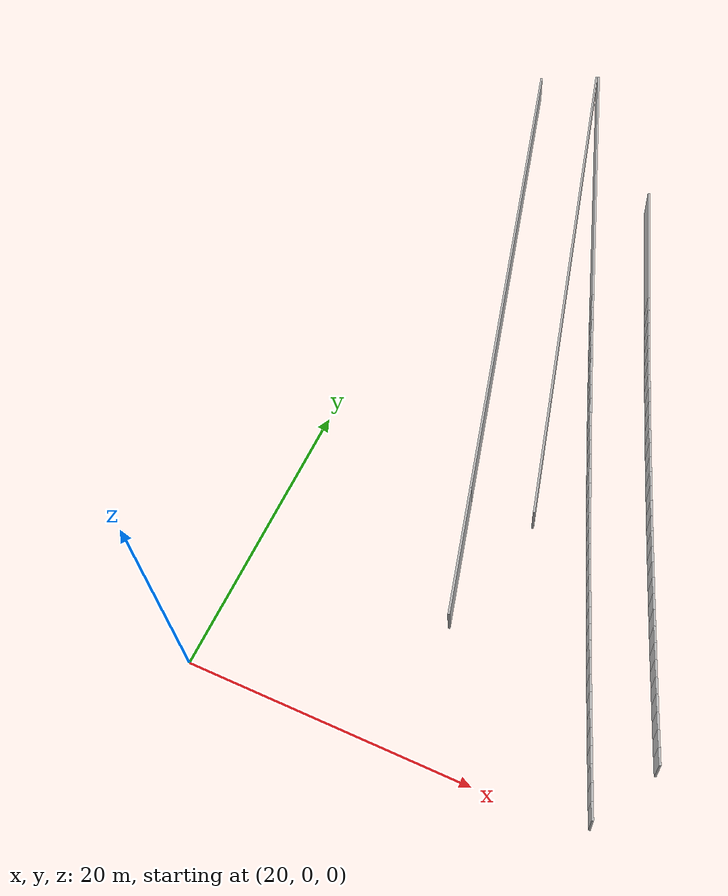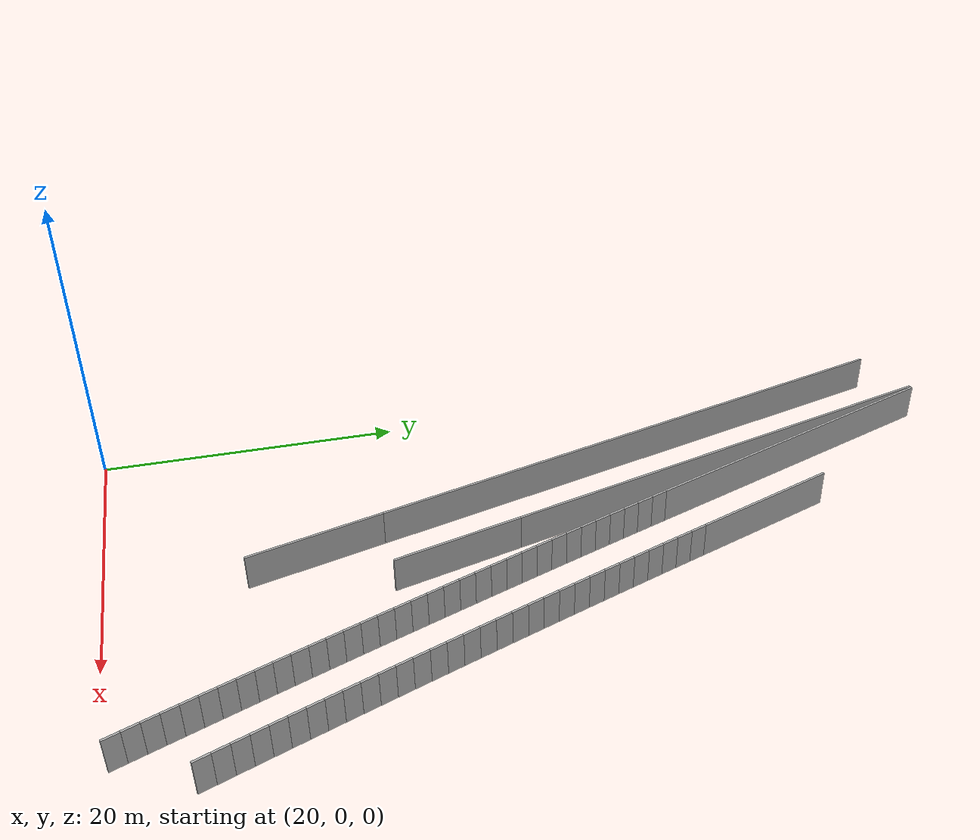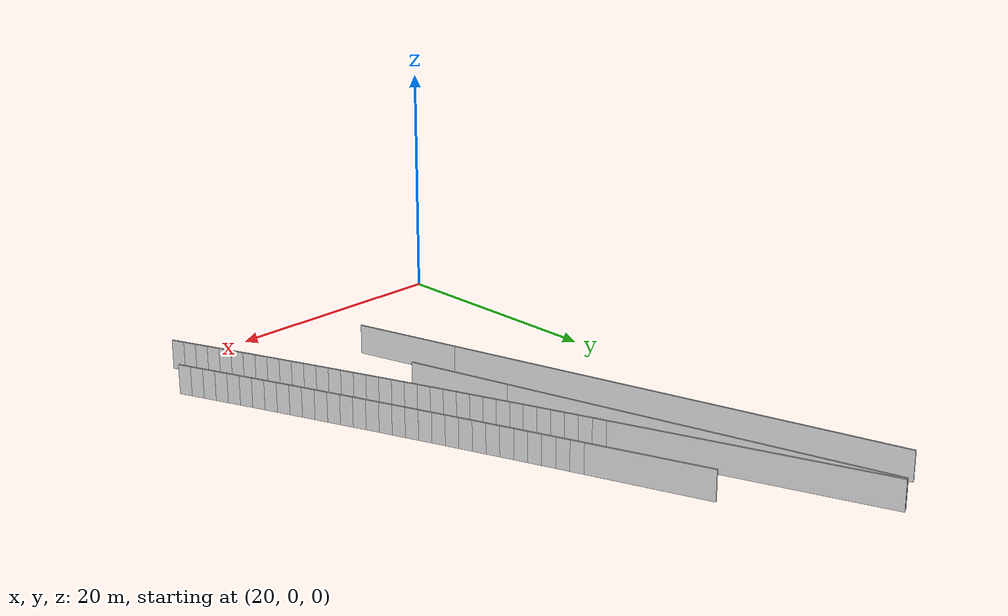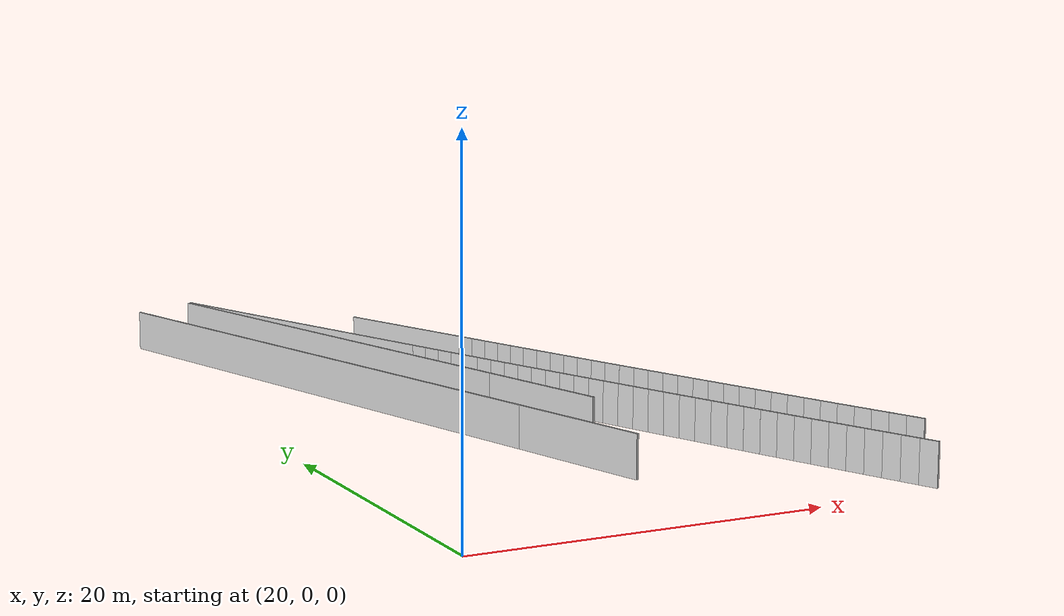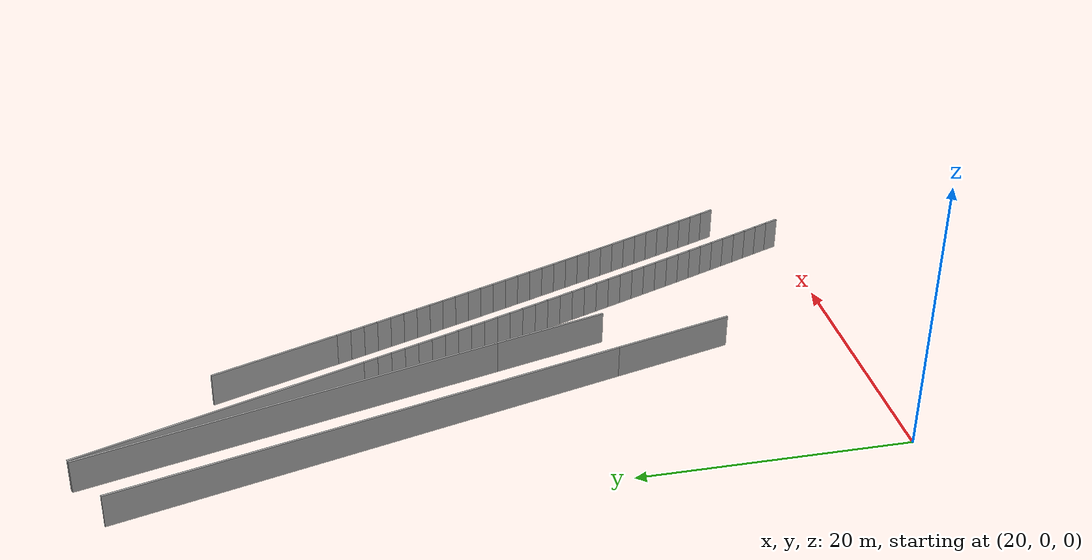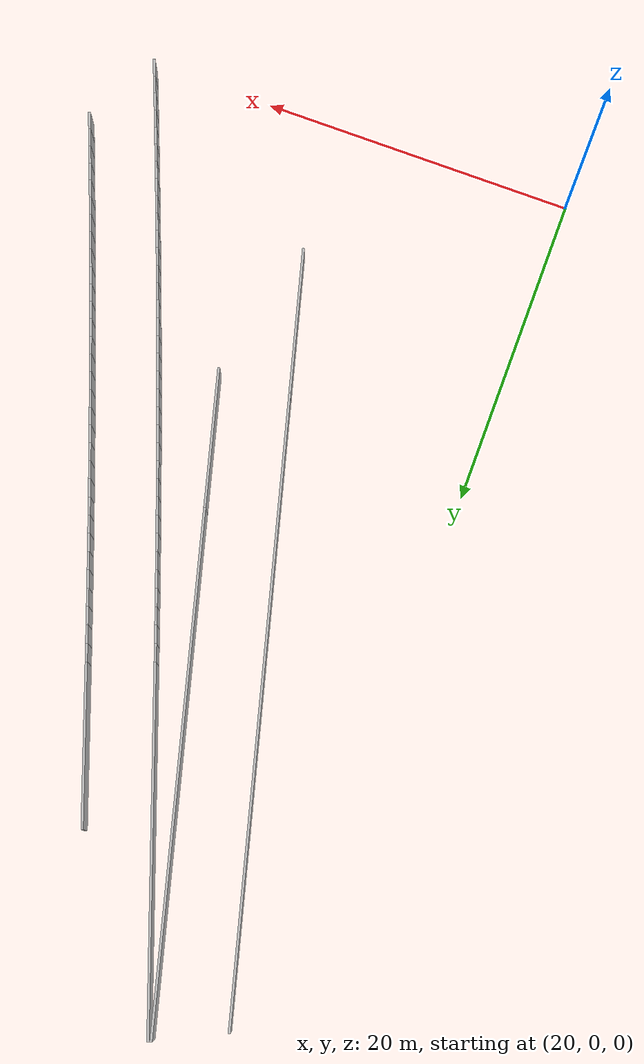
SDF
<?xml version="1.0" ?>
<sdf version="1.6">
  <model name="sps_0416">
    <pose frame="">0 0 0 0 -0 0</pose>
    <static>1</static>
    <self_collide>0</self_collide>
    <allow_auto_disable>0</allow_auto_disable>
    <link name="Wall0">
      <kinematic>0</kinematic>
      <gravity>1</gravity>
      <self_collide>0</self_collide>
      <collision name="collision">
        <geometry>
          <box>
            <size>22.2248 0.15 2.5</size>
          </box>
        </geometry>
        <pose frame="">0 0 0 0 -0 0</pose>
      </collision>
      <visual name="visual">
        <geometry>
          <box>
            <size>22.2248 0.15 2.5</size>
          </box>
        </geometry>
        <pose frame="">0 0 0 0 -0 0</pose>
        <cast_shadows>1</cast_shadows>
        <transparency>0.0</transparency>
      </visual>
      <pose frame="">30.1934 46.7419 1.25 0 -0 1.91495</pose>
    </link>
    <link name="Wall88">
      <kinematic>0</kinematic>
      <gravity>1</gravity>
      <self_collide>0</self_collide>
      <collision name="collision">
        <geometry>
          <box>
            <size>9.98642 0.15 2.5</size>
          </box>
        </geometry>
        <pose frame="">0 0 0 0 -0 0</pose>
      </collision>
      <visual name="visual">
        <geometry>
          <box>
            <size>9.98642 0.15 2.5</size>
          </box>
        </geometry>
        <pose frame="">0 0 0 0 -0 0</pose>
        <cast_shadows>1</cast_shadows>
        <transparency>0.0</transparency>
      </visual>
      <pose frame="">36.154 42.3808 1.25 0 0 -1.22667</pose>
    </link>
    <link name="Wall273">
      <kinematic>0</kinematic>
      <gravity>1</gravity>
      <self_collide>0</self_collide>
      <collision name="collision">
        <geometry>
          <box>
            <size>8.81616 0.15 2.5</size>
          </box>
        </geometry>
        <pose frame="">0 0 0 0 -0 0</pose>
      </collision>
      <visual name="visual">
        <geometry>
          <box>
            <size>8.81616 0.15 2.5</size>
          </box>
        </geometry>
        <pose frame="">0 0 0 0 -0 0</pose>
        <cast_shadows>1</cast_shadows>
        <transparency>0.0</transparency>
      </visual>
      <pose frame="">35.6053 22.1523 1.25 0 -0 1.83141</pose>
    </link>
    <link name="Wall274">
      <kinematic>0</kinematic>
      <gravity>1</gravity>
      <self_collide>0</self_collide>
      <collision name="collision">
        <geometry>
          <box>
            <size>31.8043 0.15 2.5</size>
          </box>
        </geometry>
        <pose frame="">0 0 0 0 -0 0</pose>
      </collision>
      <visual name="visual">
        <geometry>
          <box>
            <size>31.8043 0.15 2.5</size>
          </box>
        </geometry>
        <pose frame="">0 0 0 0 -0 0</pose>
        <cast_shadows>1</cast_shadows>
        <transparency>0.0</transparency>
      </visual>
      <pose frame="">30.3719 41.7767 1.25 0 -0 1.83141</pose>
    </link>
    <link name="Wall332">
      <kinematic>0</kinematic>
      <gravity>1</gravity>
      <self_collide>0</self_collide>
      <collision name="collision">
        <geometry>
          <box>
            <size>9.27059 0.15 2.5</size>
          </box>
        </geometry>
        <pose frame="">0 0 0 0 -0 0</pose>
      </collision>
      <visual name="visual">
        <geometry>
          <box>
            <size>9.27059 0.15 2.5</size>
          </box>
        </geometry>
        <pose frame="">0 0 0 0 -0 0</pose>
        <cast_shadows>1</cast_shadows>
        <transparency>0.0</transparency>
      </visual>
      <pose frame="">33.2761 13.414 1.25 0 -0 1.83117</pose>
    </link>
    <link name="Wall333">
      <kinematic>0</kinematic>
      <gravity>1</gravity>
      <self_collide>0</self_collide>
      <collision name="collision">
        <geometry>
          <box>
            <size>38.5413 0.15 2.5</size>
          </box>
        </geometry>
        <pose frame="">0 0 0 0 -0 0</pose>
      </collision>
      <visual name="visual">
        <geometry>
          <box>
            <size>38.5413 0.15 2.5</size>
          </box>
        </geometry>
        <pose frame="">0 0 0 0 -0 0</pose>
        <cast_shadows>1</cast_shadows>
        <transparency>0.0</transparency>
      </visual>
      <pose frame="">27.1216 36.5142 1.25 0 -0 1.83117</pose>
    </link>
    <link name="Wall4709">
      <kinematic>0</kinematic>
      <gravity>1</gravity>
      <self_collide>0</self_collide>
      <collision name="collision">
        <geometry>
          <box>
            <size>1.12145 0.15 2.5</size>
          </box>
        </geometry>
        <pose frame="">0 0 0 0 -0 0</pose>
      </collision>
      <visual name="visual">
        <geometry>
          <box>
            <size>1.12145 0.15 2.5</size>
          </box>
        </geometry>
        <pose frame="">0 0 0 0 -0 0</pose>
        <cast_shadows>1</cast_shadows>
        <transparency>0.0</transparency>
      </visual>
      <pose frame="">38.0285 37.1527 1.25 0 0 -1.22545</pose>
    </link>
    <link name="Wall4710">
      <kinematic>0</kinematic>
      <gravity>1</gravity>
      <self_collide>0</self_collide>
      <collision name="collision">
        <geometry>
          <box>
            <size>1.1215 0.15 2.5</size>
          </box>
        </geometry>
        <pose frame="">0 0 0 0 -0 0</pose>
      </collision>
      <visual name="visual">
        <geometry>
          <box>
            <size>1.1215 0.15 2.5</size>
          </box>
        </geometry>
        <pose frame="">0 0 0 0 -0 0</pose>
        <cast_shadows>1</cast_shadows>
        <transparency>0.0</transparency>
      </visual>
      <pose frame="">38.4088 36.0977 1.25 0 0 -1.22419</pose>
    </link>
    <link name="Wall4711">
      <kinematic>0</kinematic>
      <gravity>1</gravity>
      <self_collide>0</self_collide>
      <collision name="collision">
        <geometry>
          <box>
            <size>1.12128 0.15 2.5</size>
          </box>
        </geometry>
        <pose frame="">0 0 0 0 -0 0</pose>
      </collision>
      <visual name="visual">
        <geometry>
          <box>
            <size>1.12128 0.15 2.5</size>
          </box>
        </geometry>
        <pose frame="">0 0 0 0 -0 0</pose>
        <cast_shadows>1</cast_shadows>
        <transparency>0.0</transparency>
      </visual>
      <pose frame="">38.7903 35.0432 1.25 0 0 -1.22314</pose>
    </link>
    <link name="Wall4712">
      <kinematic>0</kinematic>
      <gravity>1</gravity>
      <self_collide>0</self_collide>
      <collision name="collision">
        <geometry>
          <box>
            <size>1.1214 0.15 2.5</size>
          </box>
        </geometry>
        <pose frame="">0 0 0 0 -0 0</pose>
      </collision>
      <visual name="visual">
        <geometry>
          <box>
            <size>1.1214 0.15 2.5</size>
          </box>
        </geometry>
        <pose frame="">0 0 0 0 -0 0</pose>
        <cast_shadows>1</cast_shadows>
        <transparency>0.0</transparency>
      </visual>
      <pose frame="">39.1731 33.9892 1.25 0 0 -1.22173</pose>
    </link>
    <link name="Wall4713">
      <kinematic>0</kinematic>
      <gravity>1</gravity>
      <self_collide>0</self_collide>
      <collision name="collision">
        <geometry>
          <box>
            <size>1.12143 0.15 2.5</size>
          </box>
        </geometry>
        <pose frame="">0 0 0 0 -0 0</pose>
      </collision>
      <visual name="visual">
        <geometry>
          <box>
            <size>1.12143 0.15 2.5</size>
          </box>
        </geometry>
        <pose frame="">0 0 0 0 -0 0</pose>
        <cast_shadows>1</cast_shadows>
        <transparency>0.0</transparency>
      </visual>
      <pose frame="">39.5572 32.9356 1.25 0 0 -1.2207</pose>
    </link>
    <link name="Wall4714">
      <kinematic>0</kinematic>
      <gravity>1</gravity>
      <self_collide>0</self_collide>
      <collision name="collision">
        <geometry>
          <box>
            <size>1.12126 0.15 2.5</size>
          </box>
        </geometry>
        <pose frame="">0 0 0 0 -0 0</pose>
      </collision>
      <visual name="visual">
        <geometry>
          <box>
            <size>1.12126 0.15 2.5</size>
          </box>
        </geometry>
        <pose frame="">0 0 0 0 -0 0</pose>
        <cast_shadows>1</cast_shadows>
        <transparency>0.0</transparency>
      </visual>
      <pose frame="">39.9424 31.8825 1.25 0 0 -1.21954</pose>
    </link>
    <link name="Wall4715">
      <kinematic>0</kinematic>
      <gravity>1</gravity>
      <self_collide>0</self_collide>
      <collision name="collision">
        <geometry>
          <box>
            <size>1.1214 0.15 2.5</size>
          </box>
        </geometry>
        <pose frame="">0 0 0 0 -0 0</pose>
      </collision>
      <visual name="visual">
        <geometry>
          <box>
            <size>1.1214 0.15 2.5</size>
          </box>
        </geometry>
        <pose frame="">0 0 0 0 -0 0</pose>
        <cast_shadows>1</cast_shadows>
        <transparency>0.0</transparency>
      </visual>
      <pose frame="">40.3289 30.8299 1.25 0 0 -1.21825</pose>
    </link>
    <link name="Wall4716">
      <kinematic>0</kinematic>
      <gravity>1</gravity>
      <self_collide>0</self_collide>
      <collision name="collision">
        <geometry>
          <box>
            <size>1.12134 0.15 2.5</size>
          </box>
        </geometry>
        <pose frame="">0 0 0 0 -0 0</pose>
      </collision>
      <visual name="visual">
        <geometry>
          <box>
            <size>1.12134 0.15 2.5</size>
          </box>
        </geometry>
        <pose frame="">0 0 0 0 -0 0</pose>
        <cast_shadows>1</cast_shadows>
        <transparency>0.0</transparency>
      </visual>
      <pose frame="">40.7167 29.7777 1.25 0 0 -1.21713</pose>
    </link>
    <link name="Wall4717">
      <kinematic>0</kinematic>
      <gravity>1</gravity>
      <self_collide>0</self_collide>
      <collision name="collision">
        <geometry>
          <box>
            <size>1.12131 0.15 2.5</size>
          </box>
        </geometry>
        <pose frame="">0 0 0 0 -0 0</pose>
      </collision>
      <visual name="visual">
        <geometry>
          <box>
            <size>1.12131 0.15 2.5</size>
          </box>
        </geometry>
        <pose frame="">0 0 0 0 -0 0</pose>
        <cast_shadows>1</cast_shadows>
        <transparency>0.0</transparency>
      </visual>
      <pose frame="">41.1056 28.726 1.25 0 0 -1.21596</pose>
    </link>
    <link name="Wall4718">
      <kinematic>0</kinematic>
      <gravity>1</gravity>
      <self_collide>0</self_collide>
      <collision name="collision">
        <geometry>
          <box>
            <size>1.12127 0.15 2.5</size>
          </box>
        </geometry>
        <pose frame="">0 0 0 0 -0 0</pose>
      </collision>
      <visual name="visual">
        <geometry>
          <box>
            <size>1.12127 0.15 2.5</size>
          </box>
        </geometry>
        <pose frame="">0 0 0 0 -0 0</pose>
        <cast_shadows>1</cast_shadows>
        <transparency>0.0</transparency>
      </visual>
      <pose frame="">41.4958 27.6748 1.25 0 0 -1.21478</pose>
    </link>
    <link name="Wall4719">
      <kinematic>0</kinematic>
      <gravity>1</gravity>
      <self_collide>0</self_collide>
      <collision name="collision">
        <geometry>
          <box>
            <size>1.12142 0.15 2.5</size>
          </box>
        </geometry>
        <pose frame="">0 0 0 0 -0 0</pose>
      </collision>
      <visual name="visual">
        <geometry>
          <box>
            <size>1.12142 0.15 2.5</size>
          </box>
        </geometry>
        <pose frame="">0 0 0 0 -0 0</pose>
        <cast_shadows>1</cast_shadows>
        <transparency>0.0</transparency>
      </visual>
      <pose frame="">41.8874 26.624 1.25 0 0 -1.2135</pose>
    </link>
    <link name="Wall4720">
      <kinematic>0</kinematic>
      <gravity>1</gravity>
      <self_collide>0</self_collide>
      <collision name="collision">
        <geometry>
          <box>
            <size>1.12148 0.15 2.5</size>
          </box>
        </geometry>
        <pose frame="">0 0 0 0 -0 0</pose>
      </collision>
      <visual name="visual">
        <geometry>
          <box>
            <size>1.12148 0.15 2.5</size>
          </box>
        </geometry>
        <pose frame="">0 0 0 0 -0 0</pose>
        <cast_shadows>1</cast_shadows>
        <transparency>0.0</transparency>
      </visual>
      <pose frame="">42.2801 25.5736 1.25 0 0 -1.21241</pose>
    </link>
    <link name="Wall4721">
      <kinematic>0</kinematic>
      <gravity>1</gravity>
      <self_collide>0</self_collide>
      <collision name="collision">
        <geometry>
          <box>
            <size>1.12154 0.15 2.5</size>
          </box>
        </geometry>
        <pose frame="">0 0 0 0 -0 0</pose>
      </collision>
      <visual name="visual">
        <geometry>
          <box>
            <size>1.12154 0.15 2.5</size>
          </box>
        </geometry>
        <pose frame="">0 0 0 0 -0 0</pose>
        <cast_shadows>1</cast_shadows>
        <transparency>0.0</transparency>
      </visual>
      <pose frame="">42.6742 24.5236 1.25 0 0 -1.21121</pose>
    </link>
    <link name="Wall4722">
      <kinematic>0</kinematic>
      <gravity>1</gravity>
      <self_collide>0</self_collide>
      <collision name="collision">
        <geometry>
          <box>
            <size>1.12135 0.15 2.5</size>
          </box>
        </geometry>
        <pose frame="">0 0 0 0 -0 0</pose>
      </collision>
      <visual name="visual">
        <geometry>
          <box>
            <size>1.12135 0.15 2.5</size>
          </box>
        </geometry>
        <pose frame="">0 0 0 0 -0 0</pose>
        <cast_shadows>1</cast_shadows>
        <transparency>0.0</transparency>
      </visual>
      <pose frame="">43.0694 23.4741 1.25 0 0 -1.2101</pose>
    </link>
    <link name="Wall4723">
      <kinematic>0</kinematic>
      <gravity>1</gravity>
      <self_collide>0</self_collide>
      <collision name="collision">
        <geometry>
          <box>
            <size>1.1213 0.15 2.5</size>
          </box>
        </geometry>
        <pose frame="">0 0 0 0 -0 0</pose>
      </collision>
      <visual name="visual">
        <geometry>
          <box>
            <size>1.1213 0.15 2.5</size>
          </box>
        </geometry>
        <pose frame="">0 0 0 0 -0 0</pose>
        <cast_shadows>1</cast_shadows>
        <transparency>0.0</transparency>
      </visual>
      <pose frame="">43.4658 22.4252 1.25 0 0 -1.20869</pose>
    </link>
    <link name="Wall4724">
      <kinematic>0</kinematic>
      <gravity>1</gravity>
      <self_collide>0</self_collide>
      <collision name="collision">
        <geometry>
          <box>
            <size>1.12147 0.15 2.5</size>
          </box>
        </geometry>
        <pose frame="">0 0 0 0 -0 0</pose>
      </collision>
      <visual name="visual">
        <geometry>
          <box>
            <size>1.12147 0.15 2.5</size>
          </box>
        </geometry>
        <pose frame="">0 0 0 0 -0 0</pose>
        <cast_shadows>1</cast_shadows>
        <transparency>0.0</transparency>
      </visual>
      <pose frame="">43.8635 21.3767 1.25 0 0 -1.20782</pose>
    </link>
    <link name="Wall4725">
      <kinematic>0</kinematic>
      <gravity>1</gravity>
      <self_collide>0</self_collide>
      <collision name="collision">
        <geometry>
          <box>
            <size>1.12132 0.15 2.5</size>
          </box>
        </geometry>
        <pose frame="">0 0 0 0 -0 0</pose>
      </collision>
      <visual name="visual">
        <geometry>
          <box>
            <size>1.12132 0.15 2.5</size>
          </box>
        </geometry>
        <pose frame="">0 0 0 0 -0 0</pose>
        <cast_shadows>1</cast_shadows>
        <transparency>0.0</transparency>
      </visual>
      <pose frame="">44.2626 20.3287 1.25 0 0 -1.20619</pose>
    </link>
    <link name="Wall4726">
      <kinematic>0</kinematic>
      <gravity>1</gravity>
      <self_collide>0</self_collide>
      <collision name="collision">
        <geometry>
          <box>
            <size>1.12142 0.15 2.5</size>
          </box>
        </geometry>
        <pose frame="">0 0 0 0 -0 0</pose>
      </collision>
      <visual name="visual">
        <geometry>
          <box>
            <size>1.12142 0.15 2.5</size>
          </box>
        </geometry>
        <pose frame="">0 0 0 0 -0 0</pose>
        <cast_shadows>1</cast_shadows>
        <transparency>0.0</transparency>
      </visual>
      <pose frame="">44.6629 19.2812 1.25 0 0 -1.20535</pose>
    </link>
    <link name="Wall4727">
      <kinematic>0</kinematic>
      <gravity>1</gravity>
      <self_collide>0</self_collide>
      <collision name="collision">
        <geometry>
          <box>
            <size>1.12143 0.15 2.5</size>
          </box>
        </geometry>
        <pose frame="">0 0 0 0 -0 0</pose>
      </collision>
      <visual name="visual">
        <geometry>
          <box>
            <size>1.12143 0.15 2.5</size>
          </box>
        </geometry>
        <pose frame="">0 0 0 0 -0 0</pose>
        <cast_shadows>1</cast_shadows>
        <transparency>0.0</transparency>
      </visual>
      <pose frame="">45.0644 18.2341 1.25 0 0 -1.20395</pose>
    </link>
    <link name="Wall4728">
      <kinematic>0</kinematic>
      <gravity>1</gravity>
      <self_collide>0</self_collide>
      <collision name="collision">
        <geometry>
          <box>
            <size>1.12145 0.15 2.5</size>
          </box>
        </geometry>
        <pose frame="">0 0 0 0 -0 0</pose>
      </collision>
      <visual name="visual">
        <geometry>
          <box>
            <size>1.12145 0.15 2.5</size>
          </box>
        </geometry>
        <pose frame="">0 0 0 0 -0 0</pose>
        <cast_shadows>1</cast_shadows>
        <transparency>0.0</transparency>
      </visual>
      <pose frame="">45.4672 17.1875 1.25 0 0 -1.20285</pose>
    </link>
    <link name="Wall4729">
      <kinematic>0</kinematic>
      <gravity>1</gravity>
      <self_collide>0</self_collide>
      <collision name="collision">
        <geometry>
          <box>
            <size>1.12137 0.15 2.5</size>
          </box>
        </geometry>
        <pose frame="">0 0 0 0 -0 0</pose>
      </collision>
      <visual name="visual">
        <geometry>
          <box>
            <size>1.12137 0.15 2.5</size>
          </box>
        </geometry>
        <pose frame="">0 0 0 0 -0 0</pose>
        <cast_shadows>1</cast_shadows>
        <transparency>0.0</transparency>
      </visual>
      <pose frame="">45.8711 16.1414 1.25 0 0 -1.20166</pose>
    </link>
    <link name="Wall4730">
      <kinematic>0</kinematic>
      <gravity>1</gravity>
      <self_collide>0</self_collide>
      <collision name="collision">
        <geometry>
          <box>
            <size>1.12142 0.15 2.5</size>
          </box>
        </geometry>
        <pose frame="">0 0 0 0 -0 0</pose>
      </collision>
      <visual name="visual">
        <geometry>
          <box>
            <size>1.12142 0.15 2.5</size>
          </box>
        </geometry>
        <pose frame="">0 0 0 0 -0 0</pose>
        <cast_shadows>1</cast_shadows>
        <transparency>0.0</transparency>
      </visual>
      <pose frame="">46.2764 15.0958 1.25 0 0 -1.20051</pose>
    </link>
    <link name="Wall4731">
      <kinematic>0</kinematic>
      <gravity>1</gravity>
      <self_collide>0</self_collide>
      <collision name="collision">
        <geometry>
          <box>
            <size>1.12127 0.15 2.5</size>
          </box>
        </geometry>
        <pose frame="">0 0 0 0 -0 0</pose>
      </collision>
      <visual name="visual">
        <geometry>
          <box>
            <size>1.12127 0.15 2.5</size>
          </box>
        </geometry>
        <pose frame="">0 0 0 0 -0 0</pose>
        <cast_shadows>1</cast_shadows>
        <transparency>0.0</transparency>
      </visual>
      <pose frame="">46.6828 14.0507 1.25 0 0 -1.19935</pose>
    </link>
    <link name="Wall4732">
      <kinematic>0</kinematic>
      <gravity>1</gravity>
      <self_collide>0</self_collide>
      <collision name="collision">
        <geometry>
          <box>
            <size>1.12138 0.15 2.5</size>
          </box>
        </geometry>
        <pose frame="">0 0 0 0 -0 0</pose>
      </collision>
      <visual name="visual">
        <geometry>
          <box>
            <size>1.12138 0.15 2.5</size>
          </box>
        </geometry>
        <pose frame="">0 0 0 0 -0 0</pose>
        <cast_shadows>1</cast_shadows>
        <transparency>0.0</transparency>
      </visual>
      <pose frame="">47.0904 13.0061 1.25 0 0 -1.19804</pose>
    </link>
    <link name="Wall4733">
      <kinematic>0</kinematic>
      <gravity>1</gravity>
      <self_collide>0</self_collide>
      <collision name="collision">
        <geometry>
          <box>
            <size>1.12125 0.15 2.5</size>
          </box>
        </geometry>
        <pose frame="">0 0 0 0 -0 0</pose>
      </collision>
      <visual name="visual">
        <geometry>
          <box>
            <size>1.12125 0.15 2.5</size>
          </box>
        </geometry>
        <pose frame="">0 0 0 0 -0 0</pose>
        <cast_shadows>1</cast_shadows>
        <transparency>0.0</transparency>
      </visual>
      <pose frame="">47.4994 11.962 1.25 0 0 -1.197</pose>
    </link>
    <link name="Wall4734">
      <kinematic>0</kinematic>
      <gravity>1</gravity>
      <self_collide>0</self_collide>
      <collision name="collision">
        <geometry>
          <box>
            <size>1.12134 0.15 2.5</size>
          </box>
        </geometry>
        <pose frame="">0 0 0 0 -0 0</pose>
      </collision>
      <visual name="visual">
        <geometry>
          <box>
            <size>1.12134 0.15 2.5</size>
          </box>
        </geometry>
        <pose frame="">0 0 0 0 -0 0</pose>
        <cast_shadows>1</cast_shadows>
        <transparency>0.0</transparency>
      </visual>
      <pose frame="">47.9094 10.9184 1.25 0 0 -1.19575</pose>
    </link>
    <link name="Wall4735">
      <kinematic>0</kinematic>
      <gravity>1</gravity>
      <self_collide>0</self_collide>
      <collision name="collision">
        <geometry>
          <box>
            <size>1.12141 0.15 2.5</size>
          </box>
        </geometry>
        <pose frame="">0 0 0 0 -0 0</pose>
      </collision>
      <visual name="visual">
        <geometry>
          <box>
            <size>1.12141 0.15 2.5</size>
          </box>
        </geometry>
        <pose frame="">0 0 0 0 -0 0</pose>
        <cast_shadows>1</cast_shadows>
        <transparency>0.0</transparency>
      </visual>
      <pose frame="">48.3209 9.8752 1.25 0 0 -1.19454</pose>
    </link>
    <link name="Wall4736">
      <kinematic>0</kinematic>
      <gravity>1</gravity>
      <self_collide>0</self_collide>
      <collision name="collision">
        <geometry>
          <box>
            <size>1.1215 0.15 2.5</size>
          </box>
        </geometry>
        <pose frame="">0 0 0 0 -0 0</pose>
      </collision>
      <visual name="visual">
        <geometry>
          <box>
            <size>1.1215 0.15 2.5</size>
          </box>
        </geometry>
        <pose frame="">0 0 0 0 -0 0</pose>
        <cast_shadows>1</cast_shadows>
        <transparency>0.0</transparency>
      </visual>
      <pose frame="">48.7335 8.83241 1.25 0 0 -1.19346</pose>
    </link>
    <link name="Wall4737">
      <kinematic>0</kinematic>
      <gravity>1</gravity>
      <self_collide>0</self_collide>
      <collision name="collision">
        <geometry>
          <box>
            <size>1.12143 0.15 2.5</size>
          </box>
        </geometry>
        <pose frame="">0 0 0 0 -0 0</pose>
      </collision>
      <visual name="visual">
        <geometry>
          <box>
            <size>1.12143 0.15 2.5</size>
          </box>
        </geometry>
        <pose frame="">0 0 0 0 -0 0</pose>
        <cast_shadows>1</cast_shadows>
        <transparency>0.0</transparency>
      </visual>
      <pose frame="">49.1474 7.79011 1.25 0 0 -1.19215</pose>
    </link>
    <link name="Wall4738">
      <kinematic>0</kinematic>
      <gravity>1</gravity>
      <self_collide>0</self_collide>
      <collision name="collision">
        <geometry>
          <box>
            <size>1.12139 0.15 2.5</size>
          </box>
        </geometry>
        <pose frame="">0 0 0 0 -0 0</pose>
      </collision>
      <visual name="visual">
        <geometry>
          <box>
            <size>1.12139 0.15 2.5</size>
          </box>
        </geometry>
        <pose frame="">0 0 0 0 -0 0</pose>
        <cast_shadows>1</cast_shadows>
        <transparency>0.0</transparency>
      </visual>
      <pose frame="">49.5626 6.7484 1.25 0 0 -1.19091</pose>
    </link>
    <link name="Wall4739">
      <kinematic>0</kinematic>
      <gravity>1</gravity>
      <self_collide>0</self_collide>
      <collision name="collision">
        <geometry>
          <box>
            <size>1.12137 0.15 2.5</size>
          </box>
        </geometry>
        <pose frame="">0 0 0 0 -0 0</pose>
      </collision>
      <visual name="visual">
        <geometry>
          <box>
            <size>1.12137 0.15 2.5</size>
          </box>
        </geometry>
        <pose frame="">0 0 0 0 -0 0</pose>
        <cast_shadows>1</cast_shadows>
        <transparency>0.0</transparency>
      </visual>
      <pose frame="">49.979 5.7072 1.25 0 0 -1.18978</pose>
    </link>
    <link name="Wall9297">
      <kinematic>0</kinematic>
      <gravity>1</gravity>
      <self_collide>0</self_collide>
      <collision name="collision">
        <geometry>
          <box>
            <size>1.12636 0.15 2.5</size>
          </box>
        </geometry>
        <pose frame="">0 0 0 0 -0 0</pose>
      </collision>
      <visual name="visual">
        <geometry>
          <box>
            <size>1.12636 0.15 2.5</size>
          </box>
        </geometry>
        <pose frame="">0 0 0 0 -0 0</pose>
        <cast_shadows>1</cast_shadows>
        <transparency>0.0</transparency>
      </visual>
      <pose frame="">34.1334 35.7512 1.25 0 0 -1.22534</pose>
    </link>
    <link name="Wall9298">
      <kinematic>0</kinematic>
      <gravity>1</gravity>
      <self_collide>0</self_collide>
      <collision name="collision">
        <geometry>
          <box>
            <size>1.12626 0.15 2.5</size>
          </box>
        </geometry>
        <pose frame="">0 0 0 0 -0 0</pose>
      </collision>
      <visual name="visual">
        <geometry>
          <box>
            <size>1.12626 0.15 2.5</size>
          </box>
        </geometry>
        <pose frame="">0 0 0 0 -0 0</pose>
        <cast_shadows>1</cast_shadows>
        <transparency>0.0</transparency>
      </visual>
      <pose frame="">34.5155 34.6917 1.25 0 0 -1.22399</pose>
    </link>
    <link name="Wall9299">
      <kinematic>0</kinematic>
      <gravity>1</gravity>
      <self_collide>0</self_collide>
      <collision name="collision">
        <geometry>
          <box>
            <size>1.12625 0.15 2.5</size>
          </box>
        </geometry>
        <pose frame="">0 0 0 0 -0 0</pose>
      </collision>
      <visual name="visual">
        <geometry>
          <box>
            <size>1.12625 0.15 2.5</size>
          </box>
        </geometry>
        <pose frame="">0 0 0 0 -0 0</pose>
        <cast_shadows>1</cast_shadows>
        <transparency>0.0</transparency>
      </visual>
      <pose frame="">34.8989 33.6327 1.25 0 0 -1.22289</pose>
    </link>
    <link name="Wall9300">
      <kinematic>0</kinematic>
      <gravity>1</gravity>
      <self_collide>0</self_collide>
      <collision name="collision">
        <geometry>
          <box>
            <size>1.12626 0.15 2.5</size>
          </box>
        </geometry>
        <pose frame="">0 0 0 0 -0 0</pose>
      </collision>
      <visual name="visual">
        <geometry>
          <box>
            <size>1.12626 0.15 2.5</size>
          </box>
        </geometry>
        <pose frame="">0 0 0 0 -0 0</pose>
        <cast_shadows>1</cast_shadows>
        <transparency>0.0</transparency>
      </visual>
      <pose frame="">35.2833 32.5741 1.25 0 0 -1.22191</pose>
    </link>
    <link name="Wall9301">
      <kinematic>0</kinematic>
      <gravity>1</gravity>
      <self_collide>0</self_collide>
      <collision name="collision">
        <geometry>
          <box>
            <size>1.12651 0.15 2.5</size>
          </box>
        </geometry>
        <pose frame="">0 0 0 0 -0 0</pose>
      </collision>
      <visual name="visual">
        <geometry>
          <box>
            <size>1.12651 0.15 2.5</size>
          </box>
        </geometry>
        <pose frame="">0 0 0 0 -0 0</pose>
        <cast_shadows>1</cast_shadows>
        <transparency>0.0</transparency>
      </visual>
      <pose frame="">35.6691 31.5158 1.25 0 0 -1.22067</pose>
    </link>
    <link name="Wall9302">
      <kinematic>0</kinematic>
      <gravity>1</gravity>
      <self_collide>0</self_collide>
      <collision name="collision">
        <geometry>
          <box>
            <size>1.1264 0.15 2.5</size>
          </box>
        </geometry>
        <pose frame="">0 0 0 0 -0 0</pose>
      </collision>
      <visual name="visual">
        <geometry>
          <box>
            <size>1.1264 0.15 2.5</size>
          </box>
        </geometry>
        <pose frame="">0 0 0 0 -0 0</pose>
        <cast_shadows>1</cast_shadows>
        <transparency>0.0</transparency>
      </visual>
      <pose frame="">36.0561 30.4579 1.25 0 0 -1.21953</pose>
    </link>
    <link name="Wall9303">
      <kinematic>0</kinematic>
      <gravity>1</gravity>
      <self_collide>0</self_collide>
      <collision name="collision">
        <geometry>
          <box>
            <size>1.12624 0.15 2.5</size>
          </box>
        </geometry>
        <pose frame="">0 0 0 0 -0 0</pose>
      </collision>
      <visual name="visual">
        <geometry>
          <box>
            <size>1.12624 0.15 2.5</size>
          </box>
        </geometry>
        <pose frame="">0 0 0 0 -0 0</pose>
        <cast_shadows>1</cast_shadows>
        <transparency>0.0</transparency>
      </visual>
      <pose frame="">36.4442 29.4006 1.25 0 0 -1.21833</pose>
    </link>
    <link name="Wall9304">
      <kinematic>0</kinematic>
      <gravity>1</gravity>
      <self_collide>0</self_collide>
      <collision name="collision">
        <geometry>
          <box>
            <size>1.12626 0.15 2.5</size>
          </box>
        </geometry>
        <pose frame="">0 0 0 0 -0 0</pose>
      </collision>
      <visual name="visual">
        <geometry>
          <box>
            <size>1.12626 0.15 2.5</size>
          </box>
        </geometry>
        <pose frame="">0 0 0 0 -0 0</pose>
        <cast_shadows>1</cast_shadows>
        <transparency>0.0</transparency>
      </visual>
      <pose frame="">36.8336 28.3438 1.25 0 0 -1.21718</pose>
    </link>
    <link name="Wall9305">
      <kinematic>0</kinematic>
      <gravity>1</gravity>
      <self_collide>0</self_collide>
      <collision name="collision">
        <geometry>
          <box>
            <size>1.12624 0.15 2.5</size>
          </box>
        </geometry>
        <pose frame="">0 0 0 0 -0 0</pose>
      </collision>
      <visual name="visual">
        <geometry>
          <box>
            <size>1.12624 0.15 2.5</size>
          </box>
        </geometry>
        <pose frame="">0 0 0 0 -0 0</pose>
        <cast_shadows>1</cast_shadows>
        <transparency>0.0</transparency>
      </visual>
      <pose frame="">37.2244 27.2875 1.25 0 0 -1.21584</pose>
    </link>
    <link name="Wall9306">
      <kinematic>0</kinematic>
      <gravity>1</gravity>
      <self_collide>0</self_collide>
      <collision name="collision">
        <geometry>
          <box>
            <size>1.12624 0.15 2.5</size>
          </box>
        </geometry>
        <pose frame="">0 0 0 0 -0 0</pose>
      </collision>
      <visual name="visual">
        <geometry>
          <box>
            <size>1.12624 0.15 2.5</size>
          </box>
        </geometry>
        <pose frame="">0 0 0 0 -0 0</pose>
        <cast_shadows>1</cast_shadows>
        <transparency>0.0</transparency>
      </visual>
      <pose frame="">37.6164 26.2317 1.25 0 0 -1.21475</pose>
    </link>
    <link name="Wall9307">
      <kinematic>0</kinematic>
      <gravity>1</gravity>
      <self_collide>0</self_collide>
      <collision name="collision">
        <geometry>
          <box>
            <size>1.12644 0.15 2.5</size>
          </box>
        </geometry>
        <pose frame="">0 0 0 0 -0 0</pose>
      </collision>
      <visual name="visual">
        <geometry>
          <box>
            <size>1.12644 0.15 2.5</size>
          </box>
        </geometry>
        <pose frame="">0 0 0 0 -0 0</pose>
        <cast_shadows>1</cast_shadows>
        <transparency>0.0</transparency>
      </visual>
      <pose frame="">38.0095 25.1762 1.25 0 0 -1.21366</pose>
    </link>
    <link name="Wall9308">
      <kinematic>0</kinematic>
      <gravity>1</gravity>
      <self_collide>0</self_collide>
      <collision name="collision">
        <geometry>
          <box>
            <size>1.12641 0.15 2.5</size>
          </box>
        </geometry>
        <pose frame="">0 0 0 0 -0 0</pose>
      </collision>
      <visual name="visual">
        <geometry>
          <box>
            <size>1.12641 0.15 2.5</size>
          </box>
        </geometry>
        <pose frame="">0 0 0 0 -0 0</pose>
        <cast_shadows>1</cast_shadows>
        <transparency>0.0</transparency>
      </visual>
      <pose frame="">38.404 24.1211 1.25 0 0 -1.21232</pose>
    </link>
    <link name="Wall9309">
      <kinematic>0</kinematic>
      <gravity>1</gravity>
      <self_collide>0</self_collide>
      <collision name="collision">
        <geometry>
          <box>
            <size>1.12627 0.15 2.5</size>
          </box>
        </geometry>
        <pose frame="">0 0 0 0 -0 0</pose>
      </collision>
      <visual name="visual">
        <geometry>
          <box>
            <size>1.12627 0.15 2.5</size>
          </box>
        </geometry>
        <pose frame="">0 0 0 0 -0 0</pose>
        <cast_shadows>1</cast_shadows>
        <transparency>0.0</transparency>
      </visual>
      <pose frame="">38.7999 23.0666 1.25 0 0 -1.21111</pose>
    </link>
    <link name="Wall9310">
      <kinematic>0</kinematic>
      <gravity>1</gravity>
      <self_collide>0</self_collide>
      <collision name="collision">
        <geometry>
          <box>
            <size>1.12634 0.15 2.5</size>
          </box>
        </geometry>
        <pose frame="">0 0 0 0 -0 0</pose>
      </collision>
      <visual name="visual">
        <geometry>
          <box>
            <size>1.12634 0.15 2.5</size>
          </box>
        </geometry>
        <pose frame="">0 0 0 0 -0 0</pose>
        <cast_shadows>1</cast_shadows>
        <transparency>0.0</transparency>
      </visual>
      <pose frame="">39.1969 22.0126 1.25 0 0 -1.21003</pose>
    </link>
    <link name="Wall9311">
      <kinematic>0</kinematic>
      <gravity>1</gravity>
      <self_collide>0</self_collide>
      <collision name="collision">
        <geometry>
          <box>
            <size>1.12614 0.15 2.5</size>
          </box>
        </geometry>
        <pose frame="">0 0 0 0 -0 0</pose>
      </collision>
      <visual name="visual">
        <geometry>
          <box>
            <size>1.12614 0.15 2.5</size>
          </box>
        </geometry>
        <pose frame="">0 0 0 0 -0 0</pose>
        <cast_shadows>1</cast_shadows>
        <transparency>0.0</transparency>
      </visual>
      <pose frame="">39.5951 20.9591 1.25 0 0 -1.20881</pose>
    </link>
    <link name="Wall9312">
      <kinematic>0</kinematic>
      <gravity>1</gravity>
      <self_collide>0</self_collide>
      <collision name="collision">
        <geometry>
          <box>
            <size>1.12652 0.15 2.5</size>
          </box>
        </geometry>
        <pose frame="">0 0 0 0 -0 0</pose>
      </collision>
      <visual name="visual">
        <geometry>
          <box>
            <size>1.12652 0.15 2.5</size>
          </box>
        </geometry>
        <pose frame="">0 0 0 0 -0 0</pose>
        <cast_shadows>1</cast_shadows>
        <transparency>0.0</transparency>
      </visual>
      <pose frame="">39.9946 19.906 1.25 0 0 -1.20761</pose>
    </link>
    <link name="Wall9313">
      <kinematic>0</kinematic>
      <gravity>1</gravity>
      <self_collide>0</self_collide>
      <collision name="collision">
        <geometry>
          <box>
            <size>1.12614 0.15 2.5</size>
          </box>
        </geometry>
        <pose frame="">0 0 0 0 -0 0</pose>
      </collision>
      <visual name="visual">
        <geometry>
          <box>
            <size>1.12614 0.15 2.5</size>
          </box>
        </geometry>
        <pose frame="">0 0 0 0 -0 0</pose>
        <cast_shadows>1</cast_shadows>
        <transparency>0.0</transparency>
      </visual>
      <pose frame="">40.3953 18.8534 1.25 0 0 -1.20637</pose>
    </link>
    <link name="Wall9314">
      <kinematic>0</kinematic>
      <gravity>1</gravity>
      <self_collide>0</self_collide>
      <collision name="collision">
        <geometry>
          <box>
            <size>1.12643 0.15 2.5</size>
          </box>
        </geometry>
        <pose frame="">0 0 0 0 -0 0</pose>
      </collision>
      <visual name="visual">
        <geometry>
          <box>
            <size>1.12643 0.15 2.5</size>
          </box>
        </geometry>
        <pose frame="">0 0 0 0 -0 0</pose>
        <cast_shadows>1</cast_shadows>
        <transparency>0.0</transparency>
      </visual>
      <pose frame="">40.7974 17.8013 1.25 0 0 -1.20525</pose>
    </link>
    <link name="Wall9315">
      <kinematic>0</kinematic>
      <gravity>1</gravity>
      <self_collide>0</self_collide>
      <collision name="collision">
        <geometry>
          <box>
            <size>1.12625 0.15 2.5</size>
          </box>
        </geometry>
        <pose frame="">0 0 0 0 -0 0</pose>
      </collision>
      <visual name="visual">
        <geometry>
          <box>
            <size>1.12625 0.15 2.5</size>
          </box>
        </geometry>
        <pose frame="">0 0 0 0 -0 0</pose>
        <cast_shadows>1</cast_shadows>
        <transparency>0.0</transparency>
      </visual>
      <pose frame="">41.2006 16.7496 1.25 0 0 -1.20415</pose>
    </link>
    <link name="Wall9316">
      <kinematic>0</kinematic>
      <gravity>1</gravity>
      <self_collide>0</self_collide>
      <collision name="collision">
        <geometry>
          <box>
            <size>1.12621 0.15 2.5</size>
          </box>
        </geometry>
        <pose frame="">0 0 0 0 -0 0</pose>
      </collision>
      <visual name="visual">
        <geometry>
          <box>
            <size>1.12621 0.15 2.5</size>
          </box>
        </geometry>
        <pose frame="">0 0 0 0 -0 0</pose>
        <cast_shadows>1</cast_shadows>
        <transparency>0.0</transparency>
      </visual>
      <pose frame="">41.605 15.6985 1.25 0 0 -1.20274</pose>
    </link>
    <link name="Wall9317">
      <kinematic>0</kinematic>
      <gravity>1</gravity>
      <self_collide>0</self_collide>
      <collision name="collision">
        <geometry>
          <box>
            <size>1.1263 0.15 2.5</size>
          </box>
        </geometry>
        <pose frame="">0 0 0 0 -0 0</pose>
      </collision>
      <visual name="visual">
        <geometry>
          <box>
            <size>1.1263 0.15 2.5</size>
          </box>
        </geometry>
        <pose frame="">0 0 0 0 -0 0</pose>
        <cast_shadows>1</cast_shadows>
        <transparency>0.0</transparency>
      </visual>
      <pose frame="">42.0109 14.6479 1.25 0 0 -1.20161</pose>
    </link>
    <link name="Wall9318">
      <kinematic>0</kinematic>
      <gravity>1</gravity>
      <self_collide>0</self_collide>
      <collision name="collision">
        <geometry>
          <box>
            <size>1.12632 0.15 2.5</size>
          </box>
        </geometry>
        <pose frame="">0 0 0 0 -0 0</pose>
      </collision>
      <visual name="visual">
        <geometry>
          <box>
            <size>1.12632 0.15 2.5</size>
          </box>
        </geometry>
        <pose frame="">0 0 0 0 -0 0</pose>
        <cast_shadows>1</cast_shadows>
        <transparency>0.0</transparency>
      </visual>
      <pose frame="">42.4179 13.5977 1.25 0 0 -1.20051</pose>
    </link>
    <link name="Wall9319">
      <kinematic>0</kinematic>
      <gravity>1</gravity>
      <self_collide>0</self_collide>
      <collision name="collision">
        <geometry>
          <box>
            <size>1.12625 0.15 2.5</size>
          </box>
        </geometry>
        <pose frame="">0 0 0 0 -0 0</pose>
      </collision>
      <visual name="visual">
        <geometry>
          <box>
            <size>1.12625 0.15 2.5</size>
          </box>
        </geometry>
        <pose frame="">0 0 0 0 -0 0</pose>
        <cast_shadows>1</cast_shadows>
        <transparency>0.0</transparency>
      </visual>
      <pose frame="">42.8261 12.548 1.25 0 0 -1.19933</pose>
    </link>
    <link name="Wall9320">
      <kinematic>0</kinematic>
      <gravity>1</gravity>
      <self_collide>0</self_collide>
      <collision name="collision">
        <geometry>
          <box>
            <size>1.12645 0.15 2.5</size>
          </box>
        </geometry>
        <pose frame="">0 0 0 0 -0 0</pose>
      </collision>
      <visual name="visual">
        <geometry>
          <box>
            <size>1.12645 0.15 2.5</size>
          </box>
        </geometry>
        <pose frame="">0 0 0 0 -0 0</pose>
        <cast_shadows>1</cast_shadows>
        <transparency>0.0</transparency>
      </visual>
      <pose frame="">43.2355 11.4987 1.25 0 0 -1.19829</pose>
    </link>
    <link name="Wall9321">
      <kinematic>0</kinematic>
      <gravity>1</gravity>
      <self_collide>0</self_collide>
      <collision name="collision">
        <geometry>
          <box>
            <size>1.12622 0.15 2.5</size>
          </box>
        </geometry>
        <pose frame="">0 0 0 0 -0 0</pose>
      </collision>
      <visual name="visual">
        <geometry>
          <box>
            <size>1.12622 0.15 2.5</size>
          </box>
        </geometry>
        <pose frame="">0 0 0 0 -0 0</pose>
        <cast_shadows>1</cast_shadows>
        <transparency>0.0</transparency>
      </visual>
      <pose frame="">43.6461 10.4499 1.25 0 0 -1.19687</pose>
    </link>
    <link name="Wall9322">
      <kinematic>0</kinematic>
      <gravity>1</gravity>
      <self_collide>0</self_collide>
      <collision name="collision">
        <geometry>
          <box>
            <size>1.12627 0.15 2.5</size>
          </box>
        </geometry>
        <pose frame="">0 0 0 0 -0 0</pose>
      </collision>
      <visual name="visual">
        <geometry>
          <box>
            <size>1.12627 0.15 2.5</size>
          </box>
        </geometry>
        <pose frame="">0 0 0 0 -0 0</pose>
        <cast_shadows>1</cast_shadows>
        <transparency>0.0</transparency>
      </visual>
      <pose frame="">44.0581 9.40169 1.25 0 0 -1.19572</pose>
    </link>
    <link name="Wall9323">
      <kinematic>0</kinematic>
      <gravity>1</gravity>
      <self_collide>0</self_collide>
      <collision name="collision">
        <geometry>
          <box>
            <size>1.12621 0.15 2.5</size>
          </box>
        </geometry>
        <pose frame="">0 0 0 0 -0 0</pose>
      </collision>
      <visual name="visual">
        <geometry>
          <box>
            <size>1.12621 0.15 2.5</size>
          </box>
        </geometry>
        <pose frame="">0 0 0 0 -0 0</pose>
        <cast_shadows>1</cast_shadows>
        <transparency>0.0</transparency>
      </visual>
      <pose frame="">44.4713 8.35399 1.25 0 0 -1.19454</pose>
    </link>
    <link name="Wall9324">
      <kinematic>0</kinematic>
      <gravity>1</gravity>
      <self_collide>0</self_collide>
      <collision name="collision">
        <geometry>
          <box>
            <size>1.12626 0.15 2.5</size>
          </box>
        </geometry>
        <pose frame="">0 0 0 0 -0 0</pose>
      </collision>
      <visual name="visual">
        <geometry>
          <box>
            <size>1.12626 0.15 2.5</size>
          </box>
        </geometry>
        <pose frame="">0 0 0 0 -0 0</pose>
        <cast_shadows>1</cast_shadows>
        <transparency>0.0</transparency>
      </visual>
      <pose frame="">44.8858 7.30678 1.25 0 0 -1.19339</pose>
    </link>
    <link name="Wall9325">
      <kinematic>0</kinematic>
      <gravity>1</gravity>
      <self_collide>0</self_collide>
      <collision name="collision">
        <geometry>
          <box>
            <size>1.12636 0.15 2.5</size>
          </box>
        </geometry>
        <pose frame="">0 0 0 0 -0 0</pose>
      </collision>
      <visual name="visual">
        <geometry>
          <box>
            <size>1.12636 0.15 2.5</size>
          </box>
        </geometry>
        <pose frame="">0 0 0 0 -0 0</pose>
        <cast_shadows>1</cast_shadows>
        <transparency>0.0</transparency>
      </visual>
      <pose frame="">45.3015 6.25999 1.25 0 0 -1.19214</pose>
    </link>
    <link name="Wall9326">
      <kinematic>0</kinematic>
      <gravity>1</gravity>
      <self_collide>0</self_collide>
      <collision name="collision">
        <geometry>
          <box>
            <size>1.1263 0.15 2.5</size>
          </box>
        </geometry>
        <pose frame="">0 0 0 0 -0 0</pose>
      </collision>
      <visual name="visual">
        <geometry>
          <box>
            <size>1.1263 0.15 2.5</size>
          </box>
        </geometry>
        <pose frame="">0 0 0 0 -0 0</pose>
        <cast_shadows>1</cast_shadows>
        <transparency>0.0</transparency>
      </visual>
      <pose frame="">45.7185 5.2137 1.25 0 0 -1.19095</pose>
    </link>
    <link name="Wall9327">
      <kinematic>0</kinematic>
      <gravity>1</gravity>
      <self_collide>0</self_collide>
      <collision name="collision">
        <geometry>
          <box>
            <size>1.12633 0.15 2.5</size>
          </box>
        </geometry>
        <pose frame="">0 0 0 0 -0 0</pose>
      </collision>
      <visual name="visual">
        <geometry>
          <box>
            <size>1.12633 0.15 2.5</size>
          </box>
        </geometry>
        <pose frame="">0 0 0 0 -0 0</pose>
        <cast_shadows>1</cast_shadows>
        <transparency>0.0</transparency>
      </visual>
      <pose frame="">46.1366 4.16789 1.25 0 0 -1.18986</pose>
    </link>
    <link name="Wall9328">
      <kinematic>0</kinematic>
      <gravity>1</gravity>
      <self_collide>0</self_collide>
      <collision name="collision">
        <geometry>
          <box>
            <size>1.12615 0.15 2.5</size>
          </box>
        </geometry>
        <pose frame="">0 0 0 0 -0 0</pose>
      </collision>
      <visual name="visual">
        <geometry>
          <box>
            <size>1.12615 0.15 2.5</size>
          </box>
        </geometry>
        <pose frame="">0 0 0 0 -0 0</pose>
        <cast_shadows>1</cast_shadows>
        <transparency>0.0</transparency>
      </visual>
      <pose frame="">46.5559 3.1226 1.25 0 0 -1.1888</pose>
    </link>
    <link name="Wall9329">
      <kinematic>0</kinematic>
      <gravity>1</gravity>
      <self_collide>0</self_collide>
      <collision name="collision">
        <geometry>
          <box>
            <size>1.12617 0.15 2.5</size>
          </box>
        </geometry>
        <pose frame="">0 0 0 0 -0 0</pose>
      </collision>
      <visual name="visual">
        <geometry>
          <box>
            <size>1.12617 0.15 2.5</size>
          </box>
        </geometry>
        <pose frame="">0 0 0 0 -0 0</pose>
        <cast_shadows>1</cast_shadows>
        <transparency>0.0</transparency>
      </visual>
      <pose frame="">46.9764 2.0779 1.25 0 0 -1.18746</pose>
    </link>
    <link name="Wall9330">
      <kinematic>0</kinematic>
      <gravity>1</gravity>
      <self_collide>0</self_collide>
      <collision name="collision">
        <geometry>
          <box>
            <size>1.12647 0.15 2.5</size>
          </box>
        </geometry>
        <pose frame="">0 0 0 0 -0 0</pose>
      </collision>
      <visual name="visual">
        <geometry>
          <box>
            <size>1.12647 0.15 2.5</size>
          </box>
        </geometry>
        <pose frame="">0 0 0 0 -0 0</pose>
        <cast_shadows>1</cast_shadows>
        <transparency>0.0</transparency>
      </visual>
      <pose frame="">47.3983 1.03358 1.25 0 0 -1.18623</pose>
    </link>
  </model>
</sdf>
